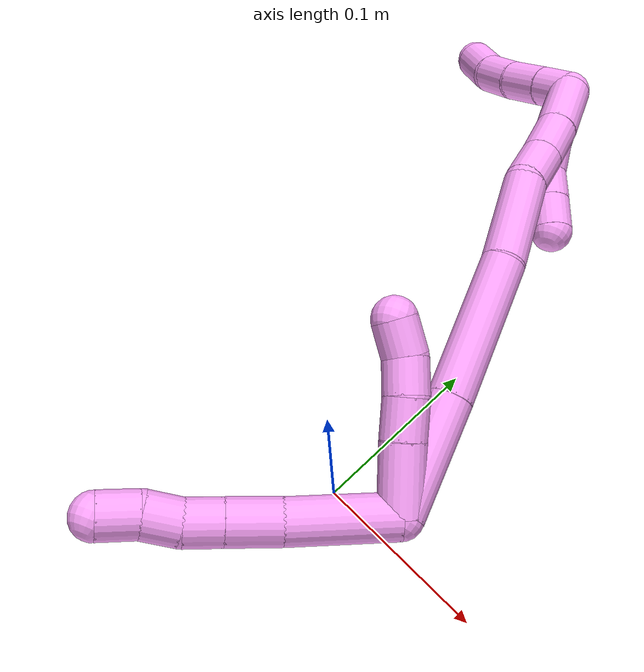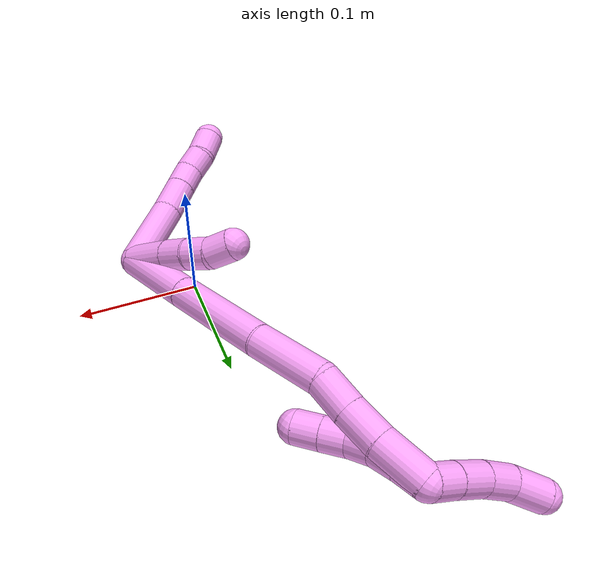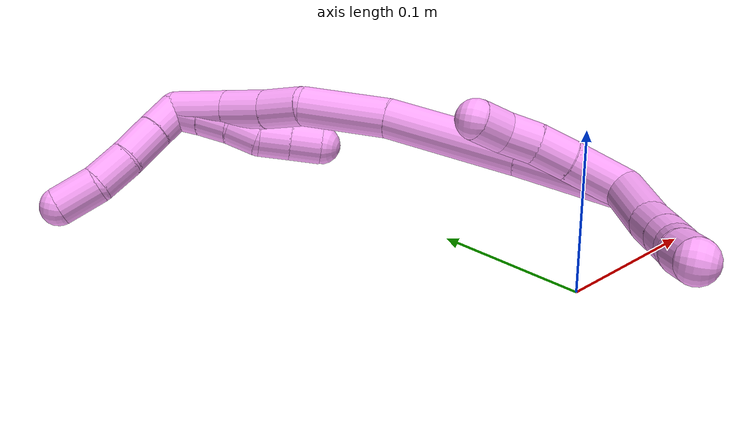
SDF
<sdf version="1.7">
 <world name="default">
  <model name="photoneo_s_sensor">
   <static>1</static>
   <pose>0 0 2 1.57079 1.57079 3.14159</pose>
   <link name="link">
    <inertial><mass>0.1</mass></inertial>
    <sensor name="sensor" type="depth">
     <update_rate>30</update_rate>
     <camera>
      <horizontal_fov>1.22</horizontal_fov>
      <image><width>1920</width><height>1200</height><format>B8G8R8</format></image>
      <clip><near>0.1</near><far>4</far></clip>
      <depth_camera><output>points</output></depth_camera>
     </camera>
     <plugin name="camera_plugin" filename="libgazebo_ros_depth_camera.so">
      <baseline>0.2</baseline>
      <alwaysOn>1</alwaysOn>
      <updateRate>0.0</updateRate>
      <cameraName>camera_ir</cameraName>
      <imageTopicName>/camera/color/image_raw</imageTopicName>
      <cameraInfoTopicName>/camera/color/camera_info</cameraInfoTopicName>
      <depthImageTopicName>/camera/depth/image_raw</depthImageTopicName>
      <depthImageCameraInfoTopicName>/camera/depth/camera_info</depthImageCameraInfoTopicName>
      <pointCloudTopicName>/camera/depth/points</pointCloudTopicName>
      <frameName>fr_optical</frameName>
      <pointCloudCutoff>0.1</pointCloudCutoff>
      <pointCloudCutoffMax>2.0</pointCloudCutoffMax>
      <distortionK1>0</distortionK1>
      <distortionK2>0</distortionK2>
      <distortionK3>0</distortionK3>
      <distortionT1>0</distortionT1>
      <distortionT2>0</distortionT2>
      <CxPrime>0</CxPrime>
      <Cx>0</Cx>
      <Cy>0</Cy>
      <focalLength>0</focalLength>
      <hackBaseline>0</hackBaseline>
     </plugin>
    </sensor>
   </link>
  </model>
  <model name="bin">
   <static>1</static>
   <link name="bottom">
    <collision name="collision-bottom">
     <pose>0 0 -0.01 0 -0 0</pose>
     <geometry><box><size>0.8 0.6 0.02</size></box></geometry>
     <surface>
      <friction><ode><mu>100</mu><mu2>100</mu2></ode></friction>
      <contact><collide_bitmask>65535</collide_bitmask></contact>
     </surface>
    </collision>
   </link>
   <link name="west_wall">
    <collision name="collision-west_wall">
     <pose>-0.41 0 0.1 0 -0 0</pose>
     <geometry><box><size>0.02 0.6 0.2</size></box></geometry>
     <surface>
      <friction><ode><mu>100</mu><mu2>100</mu2></ode></friction>
      <contact><collide_bitmask>65535</collide_bitmask></contact>
     </surface>
    </collision>
   </link>
   <link name="east_wall">
    <collision name="collision-east_wall">
     <pose>0.41 0 0.1 0 -0 0</pose>
     <geometry><box><size>0.02 0.6 0.2</size></box></geometry>
     <surface>
      <friction><ode><mu>100</mu><mu2>100</mu2></ode></friction>
      <contact><collide_bitmask>65535</collide_bitmask></contact>
     </surface>
    </collision>
   </link>
   <link name="south_wall">
    <collision name="collision-south_wall">
     <pose>0 -0.31 0.1 0 -0 0</pose>
     <geometry><box><size>0.8 0.02 0.2</size></box></geometry>
     <surface>
      <friction><ode><mu>100</mu><mu2>100</mu2></ode></friction>
      <contact><collide_bitmask>65535</collide_bitmask></contact>
     </surface>
    </collision>
   </link>
   <link name="north_wall">
    <collision name="collision-north_wall">
     <pose>0 0.31 0.1 0 -0 0</pose>
     <geometry><box><size>0.8 0.02 0.2</size></box></geometry>
     <surface>
      <friction><ode><mu>100</mu><mu2>100</mu2></ode></friction>
      <contact><collide_bitmask>65535</collide_bitmask></contact>
     </surface>
    </collision>
   </link>
  </model>
  <model name="4">
   <static>0</static>
   <link name="4">
    <collision name="collision-cylinder-e_1_2_8">
     <pose>-0.010794 -0.024645 -0.011972 2.023 -0.375272 -0.588999</pose>
     <geometry><cylinder><radius>0.0125</radius><length>0.058896</length></cylinder></geometry>
     <surface>
      <friction><ode><mu>1.16</mu><mu2>1.16</mu2><slip1>0</slip1><slip2>0</slip2></ode></friction>
      <contact><ode><kp>1e+06</kp><kd>1</kd><max_vel>0</max_vel><min_depth>0.001</min_depth></ode></contact>
     </surface>
    </collision>
    <visual name="visual-cylinder-e_1_2_8">
     <pose>-0.010794 -0.024645 -0.011972 2.023 -0.375272 -0.588999</pose>
     <geometry><cylinder><radius>0.0125</radius><length>0.058896</length></cylinder></geometry>
     <material><ambient>1 0.65098 0.996078 1</ambient></material>
    </visual>
    <collision name="collision-cylinder-e_2_8_9">
     <pose>-0.025659 -0.062041 -0.029627 1.99009 -0.283809 -0.433278</pose>
     <geometry><cylinder><radius>0.0125</radius><length>0.029085</length></cylinder></geometry>
     <surface>
      <friction><ode><mu>1.16</mu><mu2>1.16</mu2><slip1>0</slip1><slip2>0</slip2></ode></friction>
      <contact><ode><kp>1e+06</kp><kd>1</kd><max_vel>0</max_vel><min_depth>0.001</min_depth></ode></contact>
     </surface>
    </collision>
    <visual name="visual-cylinder-e_2_8_9">
     <pose>-0.025659 -0.062041 -0.029627 1.99009 -0.283809 -0.433278</pose>
     <geometry><cylinder><radius>0.0125</radius><length>0.029085</length></cylinder></geometry>
     <material><ambient>1 0.65098 0.996078 1</ambient></material>
    </visual>
    <collision name="collision-cylinder-e_3_9_10">
     <pose>-0.032638 -0.083598 -0.039285 1.99482 -0.292273 -0.448197</pose>
     <geometry><cylinder><radius>0.0125</radius><length>0.020177</length></cylinder></geometry>
     <surface>
      <friction><ode><mu>1.16</mu><mu2>1.16</mu2><slip1>0</slip1><slip2>0</slip2></ode></friction>
      <contact><ode><kp>1e+06</kp><kd>1</kd><max_vel>0</max_vel><min_depth>0.001</min_depth></ode></contact>
     </surface>
    </collision>
    <visual name="visual-cylinder-e_3_9_10">
     <pose>-0.032638 -0.083598 -0.039285 1.99482 -0.292273 -0.448197</pose>
     <geometry><cylinder><radius>0.0125</radius><length>0.020177</length></cylinder></geometry>
     <material><ambient>1 0.65098 0.996078 1</ambient></material>
    </visual>
    <collision name="collision-cylinder-e_4_10_11">
     <pose>-0.037566 -0.10201 -0.045297 1.77973 -0.202941 -0.250033</pose>
     <geometry><cylinder><radius>0.0125</radius><length>0.020052</length></cylinder></geometry>
     <surface>
      <friction><ode><mu>1.16</mu><mu2>1.16</mu2><slip1>0</slip1><slip2>0</slip2></ode></friction>
      <contact><ode><kp>1e+06</kp><kd>1</kd><max_vel>0</max_vel><min_depth>0.001</min_depth></ode></contact>
     </surface>
    </collision>
    <visual name="visual-cylinder-e_4_10_11">
     <pose>-0.037566 -0.10201 -0.045297 1.77973 -0.202941 -0.250033</pose>
     <geometry><cylinder><radius>0.0125</radius><length>0.020052</length></cylinder></geometry>
     <material><ambient>1 0.65098 0.996078 1</ambient></material>
    </visual>
    <collision name="collision-cylinder-e_5_11_6">
     <pose>-0.04199 -0.121178 -0.05197 2.02225 -0.222479 -0.352883</pose>
     <geometry><cylinder><radius>0.0125</radius><length>0.02179</length></cylinder></geometry>
     <surface>
      <friction><ode><mu>1.16</mu><mu2>1.16</mu2><slip1>0</slip1><slip2>0</slip2></ode></friction>
      <contact><ode><kp>1e+06</kp><kd>1</kd><max_vel>0</max_vel><min_depth>0.001</min_depth></ode></contact>
     </surface>
    </collision>
    <visual name="visual-cylinder-e_5_11_6">
     <pose>-0.04199 -0.121178 -0.05197 2.02225 -0.222479 -0.352883</pose>
     <geometry><cylinder><radius>0.0125</radius><length>0.02179</length></cylinder></geometry>
     <material><ambient>1 0.65098 0.996078 1</ambient></material>
    </visual>
    <collision name="collision-cylinder-e_1_2_12">
     <pose>0.00416 -0.008535 0.016257 0.483477 0.222784 0.055144</pose>
     <geometry><cylinder><radius>0.0125</radius><length>0.037653</length></cylinder></geometry>
     <surface>
      <friction><ode><mu>1.16</mu><mu2>1.16</mu2><slip1>0</slip1><slip2>0</slip2></ode></friction>
      <contact><ode><kp>1e+06</kp><kd>1</kd><max_vel>0</max_vel><min_depth>0.001</min_depth></ode></contact>
     </surface>
    </collision>
    <visual name="visual-cylinder-e_1_2_12">
     <pose>0.00416 -0.008535 0.016257 0.483477 0.222784 0.055144</pose>
     <geometry><cylinder><radius>0.0125</radius><length>0.037653</length></cylinder></geometry>
     <material><ambient>1 0.65098 0.996078 1</ambient></material>
    </visual>
    <collision name="collision-cylinder-e_2_12_13">
     <pose>0.010693 -0.021542 0.042386 0.425286 0.21565 0.046733</pose>
     <geometry><cylinder><radius>0.0125</radius><length>0.02219</length></cylinder></geometry>
     <surface>
      <friction><ode><mu>1.16</mu><mu2>1.16</mu2><slip1>0</slip1><slip2>0</slip2></ode></friction>
      <contact><ode><kp>1e+06</kp><kd>1</kd><max_vel>0</max_vel><min_depth>0.001</min_depth></ode></contact>
     </surface>
    </collision>
    <visual name="visual-cylinder-e_2_12_13">
     <pose>0.010693 -0.021542 0.042386 0.425286 0.21565 0.046733</pose>
     <geometry><cylinder><radius>0.0125</radius><length>0.02219</length></cylinder></geometry>
     <material><ambient>1 0.65098 0.996078 1</ambient></material>
    </visual>
    <collision name="collision-cylinder-e_3_13_14">
     <pose>0.013896 -0.030462 0.061198 0.46171 0.082815 0.019476</pose>
     <geometry><cylinder><radius>0.0125</radius><length>0.02004</length></cylinder></geometry>
     <surface>
      <friction><ode><mu>1.16</mu><mu2>1.16</mu2><slip1>0</slip1><slip2>0</slip2></ode></friction>
      <contact><ode><kp>1e+06</kp><kd>1</kd><max_vel>0</max_vel><min_depth>0.001</min_depth></ode></contact>
     </surface>
    </collision>
    <visual name="visual-cylinder-e_3_13_14">
     <pose>0.013896 -0.030462 0.061198 0.46171 0.082815 0.019476</pose>
     <geometry><cylinder><radius>0.0125</radius><length>0.02004</length></cylinder></geometry>
     <material><ambient>1 0.65098 0.996078 1</ambient></material>
    </visual>
    <collision name="collision-cylinder-e_4_14_5">
     <pose>0.015763 -0.041906 0.077291 0.774283 0.103344 0.042167</pose>
     <geometry><cylinder><radius>0.0125</radius><length>0.020117</length></cylinder></geometry>
     <surface>
      <friction><ode><mu>1.16</mu><mu2>1.16</mu2><slip1>0</slip1><slip2>0</slip2></ode></friction>
      <contact><ode><kp>1e+06</kp><kd>1</kd><max_vel>0</max_vel><min_depth>0.001</min_depth></ode></contact>
     </surface>
    </collision>
    <visual name="visual-cylinder-e_4_14_5">
     <pose>0.015763 -0.041906 0.077291 0.774283 0.103344 0.042167</pose>
     <geometry><cylinder><radius>0.0125</radius><length>0.020117</length></cylinder></geometry>
     <material><ambient>1 0.65098 0.996078 1</ambient></material>
    </visual>
    <collision name="collision-cylinder-e_1_2_15">
     <pose>0.00379 0.000174 0.032836 -0.005298 0.114916 -0.000305</pose>
     <geometry><cylinder><radius>0.0125</radius><length>0.066109</length></cylinder></geometry>
     <surface>
      <friction><ode><mu>1.16</mu><mu2>1.16</mu2><slip1>0</slip1><slip2>0</slip2></ode></friction>
      <contact><ode><kp>1e+06</kp><kd>1</kd><max_vel>0</max_vel><min_depth>0.001</min_depth></ode></contact>
     </surface>
    </collision>
    <visual name="visual-cylinder-e_1_2_15">
     <pose>0.00379 0.000174 0.032836 -0.005298 0.114916 -0.000305</pose>
     <geometry><cylinder><radius>0.0125</radius><length>0.066109</length></cylinder></geometry>
     <material><ambient>1 0.65098 0.996078 1</ambient></material>
    </visual>
    <collision name="collision-cylinder-e_2_15_16">
     <pose>0.011363 4.8e-05 0.107657 0.007143 0.089862 0.000321</pose>
     <geometry><cylinder><radius>0.0125</radius><length>0.084313</length></cylinder></geometry>
     <surface>
      <friction><ode><mu>1.16</mu><mu2>1.16</mu2><slip1>0</slip1><slip2>0</slip2></ode></friction>
      <contact><ode><kp>1e+06</kp><kd>1</kd><max_vel>0</max_vel><min_depth>0.001</min_depth></ode></contact>
     </surface>
    </collision>
    <visual name="visual-cylinder-e_2_15_16">
     <pose>0.011363 4.8e-05 0.107657 0.007143 0.089862 0.000321</pose>
     <geometry><cylinder><radius>0.0125</radius><length>0.084313</length></cylinder></geometry>
     <material><ambient>1 0.65098 0.996078 1</ambient></material>
    </visual>
    <collision name="collision-cylinder-e_3_16_17">
     <pose>0.013748 -0.001269 0.177381 0.036666 -0.050344 -0.000923</pose>
     <geometry><cylinder><radius>0.0125</radius><length>0.055585</length></cylinder></geometry>
     <surface>
      <friction><ode><mu>1.16</mu><mu2>1.16</mu2><slip1>0</slip1><slip2>0</slip2></ode></friction>
      <contact><ode><kp>1e+06</kp><kd>1</kd><max_vel>0</max_vel><min_depth>0.001</min_depth></ode></contact>
     </surface>
    </collision>
    <visual name="visual-cylinder-e_3_16_17">
     <pose>0.013748 -0.001269 0.177381 0.036666 -0.050344 -0.000923</pose>
     <geometry><cylinder><radius>0.0125</radius><length>0.055585</length></cylinder></geometry>
     <material><ambient>1 0.65098 0.996078 1</ambient></material>
    </visual>
    <collision name="collision-cylinder-e_4_17_18">
     <pose>0.009648 0.001231 0.218156 -0.263561 -0.197464 0.026257</pose>
     <geometry><cylinder><radius>0.0125</radius><length>0.02754</length></cylinder></geometry>
     <surface>
      <friction><ode><mu>1.16</mu><mu2>1.16</mu2><slip1>0</slip1><slip2>0</slip2></ode></friction>
      <contact><ode><kp>1e+06</kp><kd>1</kd><max_vel>0</max_vel><min_depth>0.001</min_depth></ode></contact>
     </surface>
    </collision>
    <visual name="visual-cylinder-e_4_17_18">
     <pose>0.009648 0.001231 0.218156 -0.263561 -0.197464 0.026257</pose>
     <geometry><cylinder><radius>0.0125</radius><length>0.02754</length></cylinder></geometry>
     <material><ambient>1 0.65098 0.996078 1</ambient></material>
    </visual>
    <collision name="collision-cylinder-e_5_18_19">
     <pose>0.004836 0.007559 0.245019 -0.200527 -0.148464 0.014963</pose>
     <geometry><cylinder><radius>0.0125</radius><length>0.028532</length></cylinder></geometry>
     <surface>
      <friction><ode><mu>1.16</mu><mu2>1.16</mu2><slip1>0</slip1><slip2>0</slip2></ode></friction>
      <contact><ode><kp>1e+06</kp><kd>1</kd><max_vel>0</max_vel><min_depth>0.001</min_depth></ode></contact>
     </surface>
    </collision>
    <visual name="visual-cylinder-e_5_18_19">
     <pose>0.004836 0.007559 0.245019 -0.200527 -0.148464 0.014963</pose>
     <geometry><cylinder><radius>0.0125</radius><length>0.028532</length></cylinder></geometry>
     <material><ambient>1 0.65098 0.996078 1</ambient></material>
    </visual>
    <collision name="collision-cylinder-e_6_19_1">
     <pose>-0.000614 0.012326 0.277406 -0.105048 -0.177064 0.009333</pose>
     <geometry><cylinder><radius>0.0125</radius><length>0.037921</length></cylinder></geometry>
     <surface>
      <friction><ode><mu>1.16</mu><mu2>1.16</mu2><slip1>0</slip1><slip2>0</slip2></ode></friction>
      <contact><ode><kp>1e+06</kp><kd>1</kd><max_vel>0</max_vel><min_depth>0.001</min_depth></ode></contact>
     </surface>
    </collision>
    <visual name="visual-cylinder-e_6_19_1">
     <pose>-0.000614 0.012326 0.277406 -0.105048 -0.177064 0.009333</pose>
     <geometry><cylinder><radius>0.0125</radius><length>0.037921</length></cylinder></geometry>
     <material><ambient>1 0.65098 0.996078 1</ambient></material>
    </visual>
    <collision name="collision-cylinder-e_1_1_20">
     <pose>-0.004252 0.014082 0.285974 3.12152 -0.029875 -1.95828</pose>
     <geometry><cylinder><radius>0.0125</radius><length>0.02</length></cylinder></geometry>
     <surface>
      <friction><ode><mu>1.16</mu><mu2>1.16</mu2><slip1>0</slip1><slip2>0</slip2></ode></friction>
      <contact><ode><kp>1e+06</kp><kd>1</kd><max_vel>0</max_vel><min_depth>0.001</min_depth></ode></contact>
     </surface>
    </collision>
    <visual name="visual-cylinder-e_1_1_20">
     <pose>-0.004252 0.014082 0.285974 3.12152 -0.029875 -1.95828</pose>
     <geometry><cylinder><radius>0.0125</radius><length>0.02</length></cylinder></geometry>
     <material><ambient>1 0.65098 0.996078 1</ambient></material>
    </visual>
    <collision name="collision-cylinder-e_2_20_21">
     <pose>-0.005379 0.014372 0.266027 -3.0924 -0.082882 2.07066</pose>
     <geometry><cylinder><radius>0.0125</radius><length>0.02</length></cylinder></geometry>
     <surface>
      <friction><ode><mu>1.16</mu><mu2>1.16</mu2><slip1>0</slip1><slip2>0</slip2></ode></friction>
      <contact><ode><kp>1e+06</kp><kd>1</kd><max_vel>0</max_vel><min_depth>0.001</min_depth></ode></contact>
     </surface>
    </collision>
    <visual name="visual-cylinder-e_2_20_21">
     <pose>-0.005379 0.014372 0.266027 -3.0924 -0.082882 2.07066</pose>
     <geometry><cylinder><radius>0.0125</radius><length>0.02</length></cylinder></geometry>
     <material><ambient>1 0.65098 0.996078 1</ambient></material>
    </visual>
    <collision name="collision-cylinder-e_3_21_22">
     <pose>-0.007955 0.017264 0.246525 -2.89508 -0.175744 1.23634</pose>
     <geometry><cylinder><radius>0.0125</radius><length>0.02</length></cylinder></geometry>
     <surface>
      <friction><ode><mu>1.16</mu><mu2>1.16</mu2><slip1>0</slip1><slip2>0</slip2></ode></friction>
      <contact><ode><kp>1e+06</kp><kd>1</kd><max_vel>0</max_vel><min_depth>0.001</min_depth></ode></contact>
     </surface>
    </collision>
    <visual name="visual-cylinder-e_3_21_22">
     <pose>-0.007955 0.017264 0.246525 -2.89508 -0.175744 1.23634</pose>
     <geometry><cylinder><radius>0.0125</radius><length>0.02</length></cylinder></geometry>
     <material><ambient>1 0.65098 0.996078 1</ambient></material>
    </visual>
    <collision name="collision-cylinder-e_4_22_23">
     <pose>-0.008523 0.023273 0.227724 -2.76991 0.118297 -0.610261</pose>
     <geometry><cylinder><radius>0.0125</radius><length>0.02</length></cylinder></geometry>
     <surface>
      <friction><ode><mu>1.16</mu><mu2>1.16</mu2><slip1>0</slip1><slip2>0</slip2></ode></friction>
      <contact><ode><kp>1e+06</kp><kd>1</kd><max_vel>0</max_vel><min_depth>0.001</min_depth></ode></contact>
     </surface>
    </collision>
    <visual name="visual-cylinder-e_4_22_23">
     <pose>-0.008523 0.023273 0.227724 -2.76991 0.118297 -0.610261</pose>
     <geometry><cylinder><radius>0.0125</radius><length>0.02</length></cylinder></geometry>
     <material><ambient>1 0.65098 0.996078 1</ambient></material>
    </visual>
    <collision name="collision-cylinder-e_5_23_4">
     <pose>-0.006265 0.030367 0.209162 -2.78319 0.107991 -0.579923</pose>
     <geometry><cylinder><radius>0.0125</radius><length>0.02</length></cylinder></geometry>
     <surface>
      <friction><ode><mu>1.16</mu><mu2>1.16</mu2><slip1>0</slip1><slip2>0</slip2></ode></friction>
      <contact><ode><kp>1e+06</kp><kd>1</kd><max_vel>0</max_vel><min_depth>0.001</min_depth></ode></contact>
     </surface>
    </collision>
    <visual name="visual-cylinder-e_5_23_4">
     <pose>-0.006265 0.030367 0.209162 -2.78319 0.107991 -0.579923</pose>
     <geometry><cylinder><radius>0.0125</radius><length>0.02</length></cylinder></geometry>
     <material><ambient>1 0.65098 0.996078 1</ambient></material>
    </visual>
    <collision name="collision-cylinder-e_1_1_24">
     <pose>-0.012579 0.009321 0.299351 0.972286 -0.962564 -0.538545</pose>
     <geometry><cylinder><radius>0.0125</radius><length>0.021022</length></cylinder></geometry>
     <surface>
      <friction><ode><mu>1.16</mu><mu2>1.16</mu2><slip1>0</slip1><slip2>0</slip2></ode></friction>
      <contact><ode><kp>1e+06</kp><kd>1</kd><max_vel>0</max_vel><min_depth>0.001</min_depth></ode></contact>
     </surface>
    </collision>
    <visual name="visual-cylinder-e_1_1_24">
     <pose>-0.012579 0.009321 0.299351 0.972286 -0.962564 -0.538545</pose>
     <geometry><cylinder><radius>0.0125</radius><length>0.021022</length></cylinder></geometry>
     <material><ambient>1 0.65098 0.996078 1</ambient></material>
    </visual>
    <collision name="collision-cylinder-e_2_24_25">
     <pose>-0.032016 -0.001297 0.307036 0.920605 -0.989388 -0.522694</pose>
     <geometry><cylinder><radius>0.0125</radius><length>0.025873</length></cylinder></geometry>
     <surface>
      <friction><ode><mu>1.16</mu><mu2>1.16</mu2><slip1>0</slip1><slip2>0</slip2></ode></friction>
      <contact><ode><kp>1e+06</kp><kd>1</kd><max_vel>0</max_vel><min_depth>0.001</min_depth></ode></contact>
     </surface>
    </collision>
    <visual name="visual-cylinder-e_2_24_25">
     <pose>-0.032016 -0.001297 0.307036 0.920605 -0.989388 -0.522694</pose>
     <geometry><cylinder><radius>0.0125</radius><length>0.025873</length></cylinder></geometry>
     <material><ambient>1 0.65098 0.996078 1</ambient></material>
    </visual>
    <collision name="collision-cylinder-e_3_25_26">
     <pose>-0.053053 -0.011508 0.316931 0.683471 -0.956326 -0.3646</pose>
     <geometry><cylinder><radius>0.0125</radius><length>0.025029</length></cylinder></geometry>
     <surface>
      <friction><ode><mu>1.16</mu><mu2>1.16</mu2><slip1>0</slip1><slip2>0</slip2></ode></friction>
      <contact><ode><kp>1e+06</kp><kd>1</kd><max_vel>0</max_vel><min_depth>0.001</min_depth></ode></contact>
     </surface>
    </collision>
    <visual name="visual-cylinder-e_3_25_26">
     <pose>-0.053053 -0.011508 0.316931 0.683471 -0.956326 -0.3646</pose>
     <geometry><cylinder><radius>0.0125</radius><length>0.025029</length></cylinder></geometry>
     <material><ambient>1 0.65098 0.996078 1</ambient></material>
    </visual>
    <collision name="collision-cylinder-e_4_26_3">
     <pose>-0.073083 -0.019177 0.332077 0.315067 -0.773246 -0.12916</pose>
     <geometry><cylinder><radius>0.0125</radius><length>0.028076</length></cylinder></geometry>
     <surface>
      <friction><ode><mu>1.16</mu><mu2>1.16</mu2><slip1>0</slip1><slip2>0</slip2></ode></friction>
      <contact><ode><kp>1e+06</kp><kd>1</kd><max_vel>0</max_vel><min_depth>0.001</min_depth></ode></contact>
     </surface>
    </collision>
    <visual name="visual-cylinder-e_4_26_3">
     <pose>-0.073083 -0.019177 0.332077 0.315067 -0.773246 -0.12916</pose>
     <geometry><cylinder><radius>0.0125</radius><length>0.028076</length></cylinder></geometry>
     <material><ambient>1 0.65098 0.996078 1</ambient></material>
    </visual>
    <collision name="collision-sphere-3">
     <pose>-0.082888 -0.02229 0.341629 0 -0 0</pose>
     <geometry><sphere><radius>0.0125</radius></sphere></geometry>
     <surface>
      <friction><ode><mu>1.16</mu><mu2>1.16</mu2><slip1>0</slip1><slip2>0</slip2></ode></friction>
      <contact><ode><kp>1e+06</kp><kd>1</kd><max_vel>0</max_vel><min_depth>0.001</min_depth></ode></contact>
     </surface>
    </collision>
    <visual name="visual-sphere-3">
     <pose>-0.082888 -0.02229 0.341629 0 -0 0</pose>
     <geometry><sphere><radius>0.0125</radius></sphere></geometry>
     <material><ambient>1 0.65098 0.996078 1</ambient></material>
    </visual>
    <collision name="collision-sphere-26">
     <pose>-0.063278 -0.016064 0.322526 0 -0 0</pose>
     <geometry><sphere><radius>0.0125</radius></sphere></geometry>
     <surface>
      <friction><ode><mu>1.16</mu><mu2>1.16</mu2><slip1>0</slip1><slip2>0</slip2></ode></friction>
      <contact><ode><kp>1e+06</kp><kd>1</kd><max_vel>0</max_vel><min_depth>0.001</min_depth></ode></contact>
     </surface>
    </collision>
    <visual name="visual-sphere-26">
     <pose>-0.063278 -0.016064 0.322526 0 -0 0</pose>
     <geometry><sphere><radius>0.0125</radius></sphere></geometry>
     <material><ambient>1 0.65098 0.996078 1</ambient></material>
    </visual>
    <collision name="collision-sphere-25">
     <pose>-0.042827 -0.006952 0.311337 0 -0 0</pose>
     <geometry><sphere><radius>0.0125</radius></sphere></geometry>
     <surface>
      <friction><ode><mu>1.16</mu><mu2>1.16</mu2><slip1>0</slip1><slip2>0</slip2></ode></friction>
      <contact><ode><kp>1e+06</kp><kd>1</kd><max_vel>0</max_vel><min_depth>0.001</min_depth></ode></contact>
     </surface>
    </collision>
    <visual name="visual-sphere-25">
     <pose>-0.042827 -0.006952 0.311337 0 -0 0</pose>
     <geometry><sphere><radius>0.0125</radius></sphere></geometry>
     <material><ambient>1 0.65098 0.996078 1</ambient></material>
    </visual>
    <collision name="collision-sphere-24">
     <pose>-0.021205 0.004359 0.302735 0 -0 0</pose>
     <geometry><sphere><radius>0.0125</radius></sphere></geometry>
     <surface>
      <friction><ode><mu>1.16</mu><mu2>1.16</mu2><slip1>0</slip1><slip2>0</slip2></ode></friction>
      <contact><ode><kp>1e+06</kp><kd>1</kd><max_vel>0</max_vel><min_depth>0.001</min_depth></ode></contact>
     </surface>
    </collision>
    <visual name="visual-sphere-24">
     <pose>-0.021205 0.004359 0.302735 0 -0 0</pose>
     <geometry><sphere><radius>0.0125</radius></sphere></geometry>
     <material><ambient>1 0.65098 0.996078 1</ambient></material>
    </visual>
    <collision name="collision-sphere-4">
     <pose>-0.005187 0.033855 0.199852 0 -0 0</pose>
     <geometry><sphere><radius>0.0125</radius></sphere></geometry>
     <surface>
      <friction><ode><mu>1.16</mu><mu2>1.16</mu2><slip1>0</slip1><slip2>0</slip2></ode></friction>
      <contact><ode><kp>1e+06</kp><kd>1</kd><max_vel>0</max_vel><min_depth>0.001</min_depth></ode></contact>
     </surface>
    </collision>
    <visual name="visual-sphere-4">
     <pose>-0.005187 0.033855 0.199852 0 -0 0</pose>
     <geometry><sphere><radius>0.0125</radius></sphere></geometry>
     <material><ambient>1 0.65098 0.996078 1</ambient></material>
    </visual>
    <collision name="collision-sphere-23">
     <pose>-0.007343 0.02688 0.218472 0 -0 0</pose>
     <geometry><sphere><radius>0.0125</radius></sphere></geometry>
     <surface>
      <friction><ode><mu>1.16</mu><mu2>1.16</mu2><slip1>0</slip1><slip2>0</slip2></ode></friction>
      <contact><ode><kp>1e+06</kp><kd>1</kd><max_vel>0</max_vel><min_depth>0.001</min_depth></ode></contact>
     </surface>
    </collision>
    <visual name="visual-sphere-23">
     <pose>-0.007343 0.02688 0.218472 0 -0 0</pose>
     <geometry><sphere><radius>0.0125</radius></sphere></geometry>
     <material><ambient>1 0.65098 0.996078 1</ambient></material>
    </visual>
    <collision name="collision-sphere-22">
     <pose>-0.009703 0.019667 0.236976 0 -0 0</pose>
     <geometry><sphere><radius>0.0125</radius></sphere></geometry>
     <surface>
      <friction><ode><mu>1.16</mu><mu2>1.16</mu2><slip1>0</slip1><slip2>0</slip2></ode></friction>
      <contact><ode><kp>1e+06</kp><kd>1</kd><max_vel>0</max_vel><min_depth>0.001</min_depth></ode></contact>
     </surface>
    </collision>
    <visual name="visual-sphere-22">
     <pose>-0.009703 0.019667 0.236976 0 -0 0</pose>
     <geometry><sphere><radius>0.0125</radius></sphere></geometry>
     <material><ambient>1 0.65098 0.996078 1</ambient></material>
    </visual>
    <collision name="collision-sphere-21">
     <pose>-0.006207 0.014862 0.256073 0 -0 0</pose>
     <geometry><sphere><radius>0.0125</radius></sphere></geometry>
     <surface>
      <friction><ode><mu>1.16</mu><mu2>1.16</mu2><slip1>0</slip1><slip2>0</slip2></ode></friction>
      <contact><ode><kp>1e+06</kp><kd>1</kd><max_vel>0</max_vel><min_depth>0.001</min_depth></ode></contact>
     </surface>
    </collision>
    <visual name="visual-sphere-21">
     <pose>-0.006207 0.014862 0.256073 0 -0 0</pose>
     <geometry><sphere><radius>0.0125</radius></sphere></geometry>
     <material><ambient>1 0.65098 0.996078 1</ambient></material>
    </visual>
    <collision name="collision-sphere-20">
     <pose>-0.004551 0.013882 0.27598 0 -0 0</pose>
     <geometry><sphere><radius>0.0125</radius></sphere></geometry>
     <surface>
      <friction><ode><mu>1.16</mu><mu2>1.16</mu2><slip1>0</slip1><slip2>0</slip2></ode></friction>
      <contact><ode><kp>1e+06</kp><kd>1</kd><max_vel>0</max_vel><min_depth>0.001</min_depth></ode></contact>
     </surface>
    </collision>
    <visual name="visual-sphere-20">
     <pose>-0.004551 0.013882 0.27598 0 -0 0</pose>
     <geometry><sphere><radius>0.0125</radius></sphere></geometry>
     <material><ambient>1 0.65098 0.996078 1</ambient></material>
    </visual>
    <collision name="collision-sphere-6">
     <pose>-0.044394 -0.13074 -0.056606 0 -0 0</pose>
     <geometry><sphere><radius>0.0125</radius></sphere></geometry>
     <surface>
      <friction><ode><mu>1.16</mu><mu2>1.16</mu2><slip1>0</slip1><slip2>0</slip2></ode></friction>
      <contact><ode><kp>1e+06</kp><kd>1</kd><max_vel>0</max_vel><min_depth>0.001</min_depth></ode></contact>
     </surface>
    </collision>
    <visual name="visual-sphere-6">
     <pose>-0.044394 -0.13074 -0.056606 0 -0 0</pose>
     <geometry><sphere><radius>0.0125</radius></sphere></geometry>
     <material><ambient>1 0.65098 0.996078 1</ambient></material>
    </visual>
    <collision name="collision-sphere-11">
     <pose>-0.039586 -0.111616 -0.047334 0 -0 0</pose>
     <geometry><sphere><radius>0.0125</radius></sphere></geometry>
     <surface>
      <friction><ode><mu>1.16</mu><mu2>1.16</mu2><slip1>0</slip1><slip2>0</slip2></ode></friction>
      <contact><ode><kp>1e+06</kp><kd>1</kd><max_vel>0</max_vel><min_depth>0.001</min_depth></ode></contact>
     </surface>
    </collision>
    <visual name="visual-sphere-11">
     <pose>-0.039586 -0.111616 -0.047334 0 -0 0</pose>
     <geometry><sphere><radius>0.0125</radius></sphere></geometry>
     <material><ambient>1 0.65098 0.996078 1</ambient></material>
    </visual>
    <collision name="collision-sphere-10">
     <pose>-0.035545 -0.092403 -0.04326 0 -0 0</pose>
     <geometry><sphere><radius>0.0125</radius></sphere></geometry>
     <surface>
      <friction><ode><mu>1.16</mu><mu2>1.16</mu2><slip1>0</slip1><slip2>0</slip2></ode></friction>
      <contact><ode><kp>1e+06</kp><kd>1</kd><max_vel>0</max_vel><min_depth>0.001</min_depth></ode></contact>
     </surface>
    </collision>
    <visual name="visual-sphere-10">
     <pose>-0.035545 -0.092403 -0.04326 0 -0 0</pose>
     <geometry><sphere><radius>0.0125</radius></sphere></geometry>
     <material><ambient>1 0.65098 0.996078 1</ambient></material>
    </visual>
    <collision name="collision-sphere-9">
     <pose>-0.029731 -0.074792 -0.035311 0 -0 0</pose>
     <geometry><sphere><radius>0.0125</radius></sphere></geometry>
     <surface>
      <friction><ode><mu>1.16</mu><mu2>1.16</mu2><slip1>0</slip1><slip2>0</slip2></ode></friction>
      <contact><ode><kp>1e+06</kp><kd>1</kd><max_vel>0</max_vel><min_depth>0.001</min_depth></ode></contact>
     </surface>
    </collision>
    <visual name="visual-sphere-9">
     <pose>-0.029731 -0.074792 -0.035311 0 -0 0</pose>
     <geometry><sphere><radius>0.0125</radius></sphere></geometry>
     <material><ambient>1 0.65098 0.996078 1</ambient></material>
    </visual>
    <collision name="collision-sphere-2">
     <geometry><sphere><radius>0.0125</radius></sphere></geometry>
     <surface>
      <friction><ode><mu>1.16</mu><mu2>1.16</mu2><slip1>0</slip1><slip2>0</slip2></ode></friction>
      <contact><ode><kp>1e+06</kp><kd>1</kd><max_vel>0</max_vel><min_depth>0.001</min_depth></ode></contact>
     </surface>
    </collision>
    <visual name="visual-sphere-2">
     <geometry><sphere><radius>0.0125</radius></sphere></geometry>
     <material><ambient>1 0.65098 0.996078 1</ambient></material>
    </visual>
    <collision name="collision-sphere-19">
     <pose>0.002726 0.010369 0.258845 0 -0 0</pose>
     <geometry><sphere><radius>0.0125</radius></sphere></geometry>
     <surface>
      <friction><ode><mu>1.16</mu><mu2>1.16</mu2><slip1>0</slip1><slip2>0</slip2></ode></friction>
      <contact><ode><kp>1e+06</kp><kd>1</kd><max_vel>0</max_vel><min_depth>0.001</min_depth></ode></contact>
     </surface>
    </collision>
    <visual name="visual-sphere-19">
     <pose>0.002726 0.010369 0.258845 0 -0 0</pose>
     <geometry><sphere><radius>0.0125</radius></sphere></geometry>
     <material><ambient>1 0.65098 0.996078 1</ambient></material>
    </visual>
    <collision name="collision-sphere-8">
     <pose>-0.021587 -0.04929 -0.023944 0 -0 0</pose>
     <geometry><sphere><radius>0.0125</radius></sphere></geometry>
     <surface>
      <friction><ode><mu>1.16</mu><mu2>1.16</mu2><slip1>0</slip1><slip2>0</slip2></ode></friction>
      <contact><ode><kp>1e+06</kp><kd>1</kd><max_vel>0</max_vel><min_depth>0.001</min_depth></ode></contact>
     </surface>
    </collision>
    <visual name="visual-sphere-8">
     <pose>-0.021587 -0.04929 -0.023944 0 -0 0</pose>
     <geometry><sphere><radius>0.0125</radius></sphere></geometry>
     <material><ambient>1 0.65098 0.996078 1</ambient></material>
    </visual>
    <collision name="collision-sphere-12">
     <pose>0.008319 -0.017071 0.032513 0 -0 0</pose>
     <geometry><sphere><radius>0.0125</radius></sphere></geometry>
     <surface>
      <friction><ode><mu>1.16</mu><mu2>1.16</mu2><slip1>0</slip1><slip2>0</slip2></ode></friction>
      <contact><ode><kp>1e+06</kp><kd>1</kd><max_vel>0</max_vel><min_depth>0.001</min_depth></ode></contact>
     </surface>
    </collision>
    <visual name="visual-sphere-12">
     <pose>0.008319 -0.017071 0.032513 0 -0 0</pose>
     <geometry><sphere><radius>0.0125</radius></sphere></geometry>
     <material><ambient>1 0.65098 0.996078 1</ambient></material>
    </visual>
    <collision name="collision-sphere-13">
     <pose>0.013067 -0.026014 0.052258 0 -0 0</pose>
     <geometry><sphere><radius>0.0125</radius></sphere></geometry>
     <surface>
      <friction><ode><mu>1.16</mu><mu2>1.16</mu2><slip1>0</slip1><slip2>0</slip2></ode></friction>
      <contact><ode><kp>1e+06</kp><kd>1</kd><max_vel>0</max_vel><min_depth>0.001</min_depth></ode></contact>
     </surface>
    </collision>
    <visual name="visual-sphere-13">
     <pose>0.013067 -0.026014 0.052258 0 -0 0</pose>
     <geometry><sphere><radius>0.0125</radius></sphere></geometry>
     <material><ambient>1 0.65098 0.996078 1</ambient></material>
    </visual>
    <collision name="collision-sphere-14">
     <pose>0.014725 -0.034911 0.070138 0 -0 0</pose>
     <geometry><sphere><radius>0.0125</radius></sphere></geometry>
     <surface>
      <friction><ode><mu>1.16</mu><mu2>1.16</mu2><slip1>0</slip1><slip2>0</slip2></ode></friction>
      <contact><ode><kp>1e+06</kp><kd>1</kd><max_vel>0</max_vel><min_depth>0.001</min_depth></ode></contact>
     </surface>
    </collision>
    <visual name="visual-sphere-14">
     <pose>0.014725 -0.034911 0.070138 0 -0 0</pose>
     <geometry><sphere><radius>0.0125</radius></sphere></geometry>
     <material><ambient>1 0.65098 0.996078 1</ambient></material>
    </visual>
    <collision name="collision-sphere-5">
     <pose>0.0168 -0.048902 0.084444 0 -0 0</pose>
     <geometry><sphere><radius>0.0125</radius></sphere></geometry>
     <surface>
      <friction><ode><mu>1.16</mu><mu2>1.16</mu2><slip1>0</slip1><slip2>0</slip2></ode></friction>
      <contact><ode><kp>1e+06</kp><kd>1</kd><max_vel>0</max_vel><min_depth>0.001</min_depth></ode></contact>
     </surface>
    </collision>
    <visual name="visual-sphere-5">
     <pose>0.0168 -0.048902 0.084444 0 -0 0</pose>
     <geometry><sphere><radius>0.0125</radius></sphere></geometry>
     <material><ambient>1 0.65098 0.996078 1</ambient></material>
    </visual>
    <collision name="collision-sphere-15">
     <pose>0.00758 0.000348 0.065672 0 -0 0</pose>
     <geometry><sphere><radius>0.0125</radius></sphere></geometry>
     <surface>
      <friction><ode><mu>1.16</mu><mu2>1.16</mu2><slip1>0</slip1><slip2>0</slip2></ode></friction>
      <contact><ode><kp>1e+06</kp><kd>1</kd><max_vel>0</max_vel><min_depth>0.001</min_depth></ode></contact>
     </surface>
    </collision>
    <visual name="visual-sphere-15">
     <pose>0.00758 0.000348 0.065672 0 -0 0</pose>
     <geometry><sphere><radius>0.0125</radius></sphere></geometry>
     <material><ambient>1 0.65098 0.996078 1</ambient></material>
    </visual>
    <collision name="collision-sphere-16">
     <pose>0.015147 -0.000252 0.149643 0 -0 0</pose>
     <geometry><sphere><radius>0.0125</radius></sphere></geometry>
     <surface>
      <friction><ode><mu>1.16</mu><mu2>1.16</mu2><slip1>0</slip1><slip2>0</slip2></ode></friction>
      <contact><ode><kp>1e+06</kp><kd>1</kd><max_vel>0</max_vel><min_depth>0.001</min_depth></ode></contact>
     </surface>
    </collision>
    <visual name="visual-sphere-16">
     <pose>0.015147 -0.000252 0.149643 0 -0 0</pose>
     <geometry><sphere><radius>0.0125</radius></sphere></geometry>
     <material><ambient>1 0.65098 0.996078 1</ambient></material>
    </visual>
    <collision name="collision-sphere-17">
     <pose>0.012349 -0.002287 0.20512 0 -0 0</pose>
     <geometry><sphere><radius>0.0125</radius></sphere></geometry>
     <surface>
      <friction><ode><mu>1.16</mu><mu2>1.16</mu2><slip1>0</slip1><slip2>0</slip2></ode></friction>
      <contact><ode><kp>1e+06</kp><kd>1</kd><max_vel>0</max_vel><min_depth>0.001</min_depth></ode></contact>
     </surface>
    </collision>
    <visual name="visual-sphere-17">
     <pose>0.012349 -0.002287 0.20512 0 -0 0</pose>
     <geometry><sphere><radius>0.0125</radius></sphere></geometry>
     <material><ambient>1 0.65098 0.996078 1</ambient></material>
    </visual>
    <collision name="collision-sphere-18">
     <pose>0.006946 0.004748 0.231192 0 -0 0</pose>
     <geometry><sphere><radius>0.0125</radius></sphere></geometry>
     <surface>
      <friction><ode><mu>1.16</mu><mu2>1.16</mu2><slip1>0</slip1><slip2>0</slip2></ode></friction>
      <contact><ode><kp>1e+06</kp><kd>1</kd><max_vel>0</max_vel><min_depth>0.001</min_depth></ode></contact>
     </surface>
    </collision>
    <visual name="visual-sphere-18">
     <pose>0.006946 0.004748 0.231192 0 -0 0</pose>
     <geometry><sphere><radius>0.0125</radius></sphere></geometry>
     <material><ambient>1 0.65098 0.996078 1</ambient></material>
    </visual>
    <collision name="collision-sphere-1">
     <pose>-0.003953 0.014283 0.295967 0 -0 0</pose>
     <geometry><sphere><radius>0.0125</radius></sphere></geometry>
     <surface>
      <friction><ode><mu>1.16</mu><mu2>1.16</mu2><slip1>0</slip1><slip2>0</slip2></ode></friction>
      <contact><ode><kp>1e+06</kp><kd>1</kd><max_vel>0</max_vel><min_depth>0.001</min_depth></ode></contact>
     </surface>
    </collision>
    <visual name="visual-sphere-1">
     <pose>-0.003953 0.014283 0.295967 0 -0 0</pose>
     <geometry><sphere><radius>0.0125</radius></sphere></geometry>
     <material><ambient>1 0.65098 0.996078 1</ambient></material>
    </visual>
    <inertial>
     <pose>-0.007315 -0.013195 0.134347 0 -0 0</pose>
     <mass>0.75</mass>
     <inertia><ixx>0.000124</ixx><ixy>0</ixy><ixz>0</ixz><iyy>9e-05</iyy><iyz>0</iyz><izz>6e-05</izz></inertia>
    </inertial>
   </link>
   <pose>0.046373 0.003976 0.049073 -1.45388 -1.01878 0.338516</pose>
  </model>
 </world>
</sdf>
